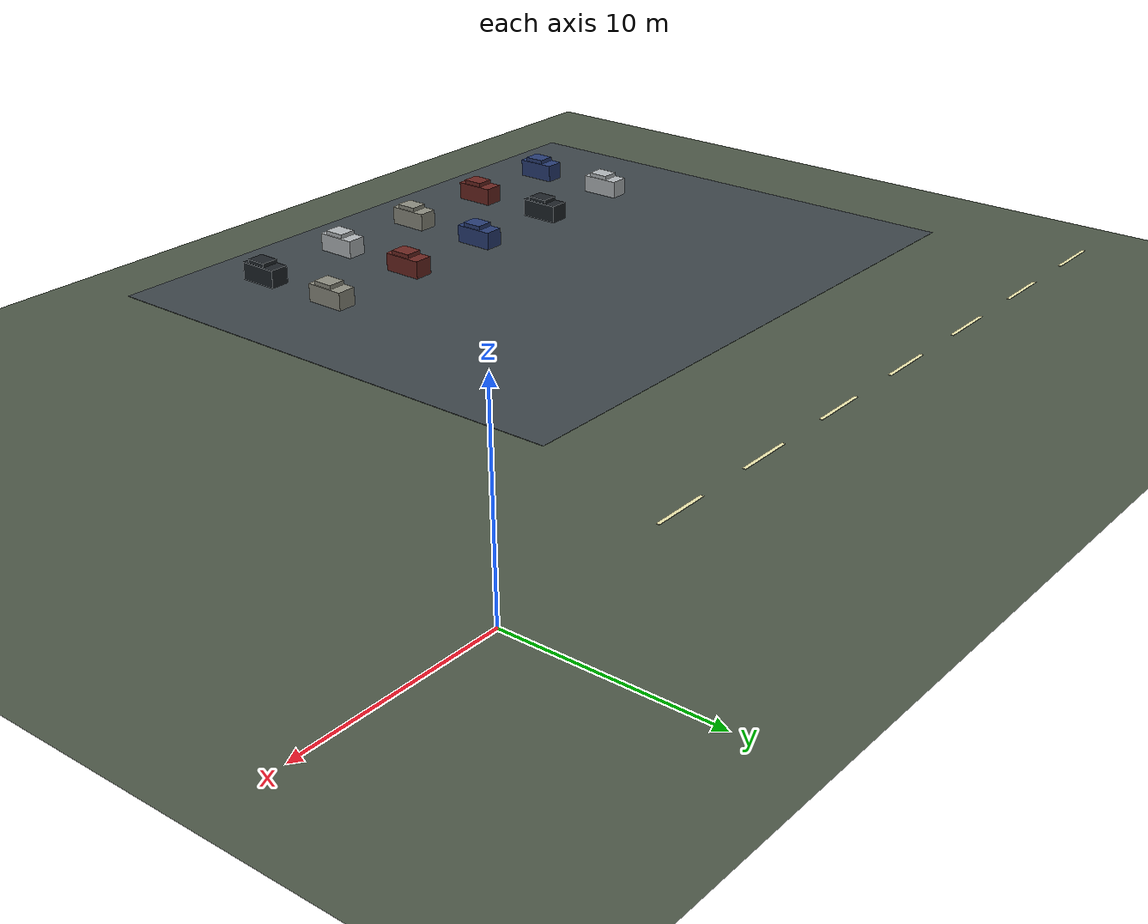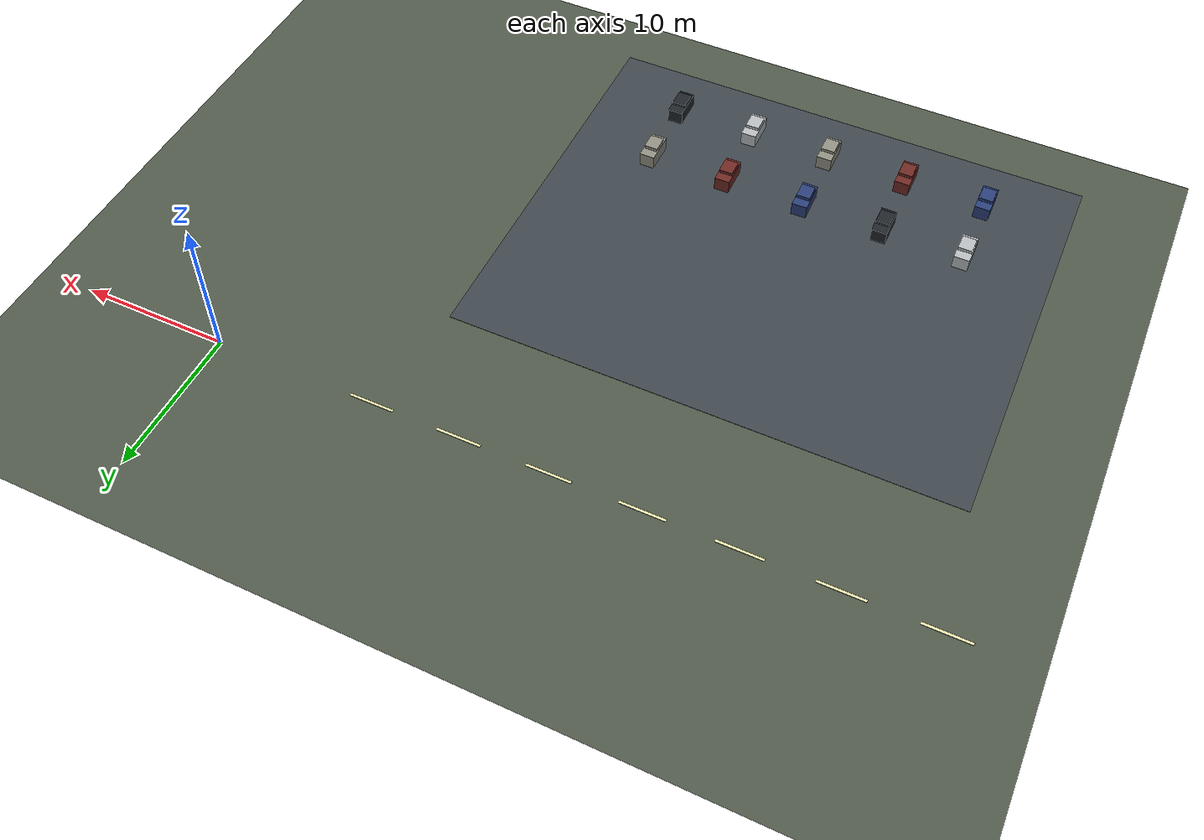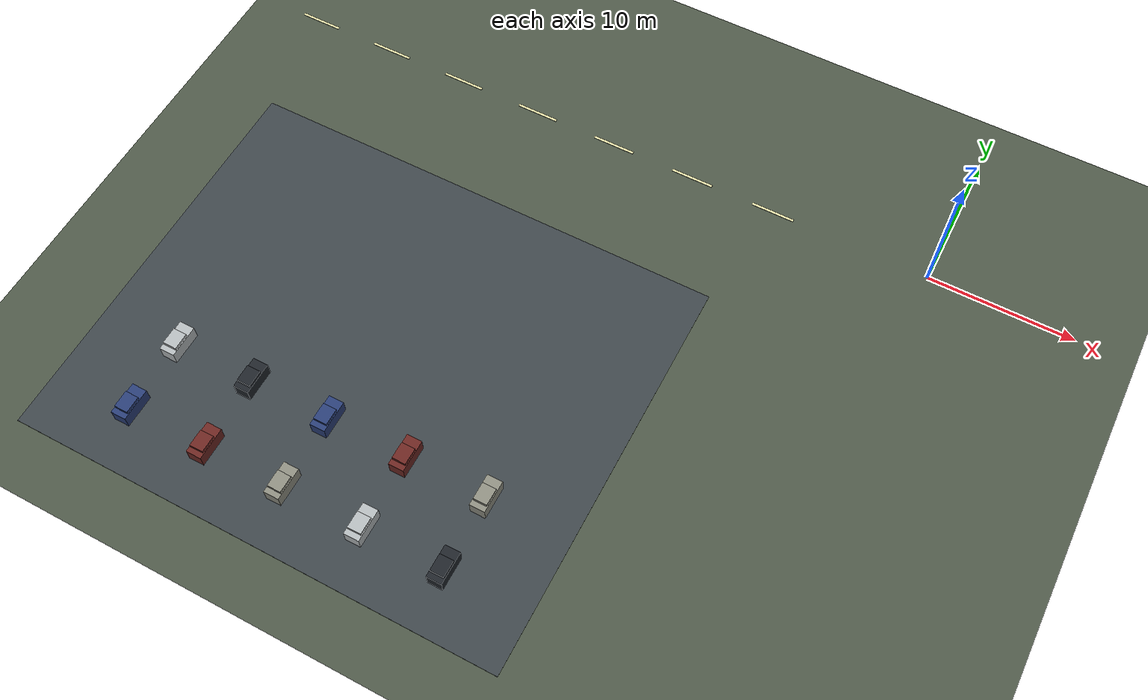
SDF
<sdf version="1.9">
 <world name="gsi_search_world_v2_industrial">
  <model name="ground_plane">
   <static>true</static>
   <link name="link">
    <collision name="collision">
     <geometry><plane><normal>0 0 1</normal><size>130 110</size></plane></geometry>
    </collision>
    <visual name="visual">
     <geometry><plane><normal>0 0 1</normal><size>130 110</size></plane></geometry>
     <material>
      <ambient>0.3 0.34 0.28 1</ambient>
      <diffuse>0.3 0.34 0.28 1</diffuse>
      <specular>0.12 0.12 0.12 1</specular>
     </material>
    </visual>
   </link>
  </model>
  <model name="semantic-employee-parking">
   <static>true</static>
   <pose>-29 -22 0.015 0 0 0</pose>
   <link name="link">
    <visual name="visual">
     <geometry><box><size>34 28 0.02</size></box></geometry>
     <cast_shadows>false</cast_shadows>
     <material>
      <ambient>0.24 0.27 0.29 1</ambient>
      <diffuse>0.24 0.27 0.29 1</diffuse>
      <specular>0.12 0.12 0.12 1</specular>
     </material>
    </visual>
   </link>
  </model>
  <model name="haul-road-marking-01">
   <static>true</static>
   <pose>-47 0 0.04 0 0 0</pose>
   <link name="link">
    <visual name="visual">
     <geometry><box><size>3 0.18 0.025</size></box></geometry>
     <cast_shadows>false</cast_shadows>
     <material>
      <ambient>0.92 0.9 0.68 1</ambient>
      <diffuse>0.92 0.9 0.68 1</diffuse>
      <specular>0.12 0.12 0.12 1</specular>
     </material>
    </visual>
   </link>
  </model>
  <model name="haul-road-marking-02">
   <static>true</static>
   <pose>-41 0 0.04 0 0 0</pose>
   <link name="link">
    <visual name="visual">
     <geometry><box><size>3 0.18 0.025</size></box></geometry>
     <cast_shadows>false</cast_shadows>
     <material>
      <ambient>0.92 0.9 0.68 1</ambient>
      <diffuse>0.92 0.9 0.68 1</diffuse>
      <specular>0.12 0.12 0.12 1</specular>
     </material>
    </visual>
   </link>
  </model>
  <model name="haul-road-marking-03">
   <static>true</static>
   <pose>-35 0 0.04 0 0 0</pose>
   <link name="link">
    <visual name="visual">
     <geometry><box><size>3 0.18 0.025</size></box></geometry>
     <cast_shadows>false</cast_shadows>
     <material>
      <ambient>0.92 0.9 0.68 1</ambient>
      <diffuse>0.92 0.9 0.68 1</diffuse>
      <specular>0.12 0.12 0.12 1</specular>
     </material>
    </visual>
   </link>
  </model>
  <model name="haul-road-marking-04">
   <static>true</static>
   <pose>-29 0 0.04 0 0 0</pose>
   <link name="link">
    <visual name="visual">
     <geometry><box><size>3 0.18 0.025</size></box></geometry>
     <cast_shadows>false</cast_shadows>
     <material>
      <ambient>0.92 0.9 0.68 1</ambient>
      <diffuse>0.92 0.9 0.68 1</diffuse>
      <specular>0.12 0.12 0.12 1</specular>
     </material>
    </visual>
   </link>
  </model>
  <model name="haul-road-marking-05">
   <static>true</static>
   <pose>-23 0 0.04 0 0 0</pose>
   <link name="link">
    <visual name="visual">
     <geometry><box><size>3 0.18 0.025</size></box></geometry>
     <cast_shadows>false</cast_shadows>
     <material>
      <ambient>0.92 0.9 0.68 1</ambient>
      <diffuse>0.92 0.9 0.68 1</diffuse>
      <specular>0.12 0.12 0.12 1</specular>
     </material>
    </visual>
   </link>
  </model>
  <model name="haul-road-marking-06">
   <static>true</static>
   <pose>-17 0 0.04 0 0 0</pose>
   <link name="link">
    <visual name="visual">
     <geometry><box><size>3 0.18 0.025</size></box></geometry>
     <cast_shadows>false</cast_shadows>
     <material>
      <ambient>0.92 0.9 0.68 1</ambient>
      <diffuse>0.92 0.9 0.68 1</diffuse>
      <specular>0.12 0.12 0.12 1</specular>
     </material>
    </visual>
   </link>
  </model>
  <model name="haul-road-marking-07">
   <static>true</static>
   <pose>-11 0 0.04 0 0 0</pose>
   <link name="link">
    <visual name="visual">
     <geometry><box><size>3 0.18 0.025</size></box></geometry>
     <cast_shadows>false</cast_shadows>
     <material>
      <ambient>0.92 0.9 0.68 1</ambient>
      <diffuse>0.92 0.9 0.68 1</diffuse>
      <specular>0.12 0.12 0.12 1</specular>
     </material>
    </visual>
   </link>
  </model>
  <model name="parked-vehicle-01">
   <static>true</static>
   <pose>-40.2 -32 0 0 0 1.5708</pose>
   <link name="body">
    <collision name="body_collision">
     <pose>0 0 0.5 0 0 0</pose>
     <geometry><box><size>2.2 1.05 1.0</size></box></geometry>
    </collision>
    <visual name="body_visual">
     <pose>0 0 0.5 0 0 0</pose>
     <geometry><box><size>2.2 1.05 1.0</size></box></geometry>
     <material>
      <ambient>0.16 0.24 0.46 1</ambient>
      <diffuse>0.16 0.24 0.46 1</diffuse>
      <specular>0.12 0.12 0.12 1</specular>
     </material>
    </visual>
    <visual name="roof">
     <pose>-0.15 0 1.05 0 0 0</pose>
     <geometry><box><size>1.15 0.94 0.35</size></box></geometry>
     <material>
      <ambient>0.16 0.24 0.46 1</ambient>
      <diffuse>0.16 0.24 0.46 1</diffuse>
      <specular>0.12 0.12 0.12 1</specular>
     </material>
    </visual>
   </link>
  </model>
  <model name="parked-vehicle-02">
   <static>true</static>
   <pose>-40.2 -27 0 0 0 1.5708</pose>
   <link name="body">
    <collision name="body_collision">
     <pose>0 0 0.5 0 0 0</pose>
     <geometry><box><size>2.2 1.05 1.0</size></box></geometry>
    </collision>
    <visual name="body_visual">
     <pose>0 0 0.5 0 0 0</pose>
     <geometry><box><size>2.2 1.05 1.0</size></box></geometry>
     <material>
      <ambient>0.7 0.72 0.73 1</ambient>
      <diffuse>0.7 0.72 0.73 1</diffuse>
      <specular>0.12 0.12 0.12 1</specular>
     </material>
    </visual>
    <visual name="roof">
     <pose>-0.15 0 1.05 0 0 0</pose>
     <geometry><box><size>1.15 0.94 0.35</size></box></geometry>
     <material>
      <ambient>0.7 0.72 0.73 1</ambient>
      <diffuse>0.7 0.72 0.73 1</diffuse>
      <specular>0.12 0.12 0.12 1</specular>
     </material>
    </visual>
   </link>
  </model>
  <model name="parked-vehicle-03">
   <static>true</static>
   <pose>-34.6 -32 0 0 0 1.5708</pose>
   <link name="body">
    <collision name="body_collision">
     <pose>0 0 0.5 0 0 0</pose>
     <geometry><box><size>2.2 1.05 1.0</size></box></geometry>
    </collision>
    <visual name="body_visual">
     <pose>0 0 0.5 0 0 0</pose>
     <geometry><box><size>2.2 1.05 1.0</size></box></geometry>
     <material>
      <ambient>0.42 0.15 0.13 1</ambient>
      <diffuse>0.42 0.15 0.13 1</diffuse>
      <specular>0.12 0.12 0.12 1</specular>
     </material>
    </visual>
    <visual name="roof">
     <pose>-0.15 0 1.05 0 0 0</pose>
     <geometry><box><size>1.15 0.94 0.35</size></box></geometry>
     <material>
      <ambient>0.42 0.15 0.13 1</ambient>
      <diffuse>0.42 0.15 0.13 1</diffuse>
      <specular>0.12 0.12 0.12 1</specular>
     </material>
    </visual>
   </link>
  </model>
  <model name="parked-vehicle-04">
   <static>true</static>
   <pose>-34.6 -27 0 0 0 1.5708</pose>
   <link name="body">
    <collision name="body_collision">
     <pose>0 0 0.5 0 0 0</pose>
     <geometry><box><size>2.2 1.05 1.0</size></box></geometry>
    </collision>
    <visual name="body_visual">
     <pose>0 0 0.5 0 0 0</pose>
     <geometry><box><size>2.2 1.05 1.0</size></box></geometry>
     <material>
      <ambient>0.12 0.14 0.16 1</ambient>
      <diffuse>0.12 0.14 0.16 1</diffuse>
      <specular>0.12 0.12 0.12 1</specular>
     </material>
    </visual>
    <visual name="roof">
     <pose>-0.15 0 1.05 0 0 0</pose>
     <geometry><box><size>1.15 0.94 0.35</size></box></geometry>
     <material>
      <ambient>0.12 0.14 0.16 1</ambient>
      <diffuse>0.12 0.14 0.16 1</diffuse>
      <specular>0.12 0.12 0.12 1</specular>
     </material>
    </visual>
   </link>
  </model>
  <model name="parked-vehicle-05">
   <static>true</static>
   <pose>-29 -32 0 0 0 1.5708</pose>
   <link name="body">
    <collision name="body_collision">
     <pose>0 0 0.5 0 0 0</pose>
     <geometry><box><size>2.2 1.05 1.0</size></box></geometry>
    </collision>
    <visual name="body_visual">
     <pose>0 0 0.5 0 0 0</pose>
     <geometry><box><size>2.2 1.05 1.0</size></box></geometry>
     <material>
      <ambient>0.55 0.55 0.5 1</ambient>
      <diffuse>0.55 0.55 0.5 1</diffuse>
      <specular>0.12 0.12 0.12 1</specular>
     </material>
    </visual>
    <visual name="roof">
     <pose>-0.15 0 1.05 0 0 0</pose>
     <geometry><box><size>1.15 0.94 0.35</size></box></geometry>
     <material>
      <ambient>0.55 0.55 0.5 1</ambient>
      <diffuse>0.55 0.55 0.5 1</diffuse>
      <specular>0.12 0.12 0.12 1</specular>
     </material>
    </visual>
   </link>
  </model>
  <model name="parked-vehicle-06">
   <static>true</static>
   <pose>-29 -27 0 0 0 1.5708</pose>
   <link name="body">
    <collision name="body_collision">
     <pose>0 0 0.5 0 0 0</pose>
     <geometry><box><size>2.2 1.05 1.0</size></box></geometry>
    </collision>
    <visual name="body_visual">
     <pose>0 0 0.5 0 0 0</pose>
     <geometry><box><size>2.2 1.05 1.0</size></box></geometry>
     <material>
      <ambient>0.16 0.24 0.46 1</ambient>
      <diffuse>0.16 0.24 0.46 1</diffuse>
      <specular>0.12 0.12 0.12 1</specular>
     </material>
    </visual>
    <visual name="roof">
     <pose>-0.15 0 1.05 0 0 0</pose>
     <geometry><box><size>1.15 0.94 0.35</size></box></geometry>
     <material>
      <ambient>0.16 0.24 0.46 1</ambient>
      <diffuse>0.16 0.24 0.46 1</diffuse>
      <specular>0.12 0.12 0.12 1</specular>
     </material>
    </visual>
   </link>
  </model>
  <model name="parked-vehicle-07">
   <static>true</static>
   <pose>-23.4 -32 0 0 0 1.5708</pose>
   <link name="body">
    <collision name="body_collision">
     <pose>0 0 0.5 0 0 0</pose>
     <geometry><box><size>2.2 1.05 1.0</size></box></geometry>
    </collision>
    <visual name="body_visual">
     <pose>0 0 0.5 0 0 0</pose>
     <geometry><box><size>2.2 1.05 1.0</size></box></geometry>
     <material>
      <ambient>0.7 0.72 0.73 1</ambient>
      <diffuse>0.7 0.72 0.73 1</diffuse>
      <specular>0.12 0.12 0.12 1</specular>
     </material>
    </visual>
    <visual name="roof">
     <pose>-0.15 0 1.05 0 0 0</pose>
     <geometry><box><size>1.15 0.94 0.35</size></box></geometry>
     <material>
      <ambient>0.7 0.72 0.73 1</ambient>
      <diffuse>0.7 0.72 0.73 1</diffuse>
      <specular>0.12 0.12 0.12 1</specular>
     </material>
    </visual>
   </link>
  </model>
  <model name="parked-vehicle-08">
   <static>true</static>
   <pose>-23.4 -27 0 0 0 1.5708</pose>
   <link name="body">
    <collision name="body_collision">
     <pose>0 0 0.5 0 0 0</pose>
     <geometry><box><size>2.2 1.05 1.0</size></box></geometry>
    </collision>
    <visual name="body_visual">
     <pose>0 0 0.5 0 0 0</pose>
     <geometry><box><size>2.2 1.05 1.0</size></box></geometry>
     <material>
      <ambient>0.42 0.15 0.13 1</ambient>
      <diffuse>0.42 0.15 0.13 1</diffuse>
      <specular>0.12 0.12 0.12 1</specular>
     </material>
    </visual>
    <visual name="roof">
     <pose>-0.15 0 1.05 0 0 0</pose>
     <geometry><box><size>1.15 0.94 0.35</size></box></geometry>
     <material>
      <ambient>0.42 0.15 0.13 1</ambient>
      <diffuse>0.42 0.15 0.13 1</diffuse>
      <specular>0.12 0.12 0.12 1</specular>
     </material>
    </visual>
   </link>
  </model>
  <model name="parked-vehicle-09">
   <static>true</static>
   <pose>-17.8 -32 0 0 0 1.5708</pose>
   <link name="body">
    <collision name="body_collision">
     <pose>0 0 0.5 0 0 0</pose>
     <geometry><box><size>2.2 1.05 1.0</size></box></geometry>
    </collision>
    <visual name="body_visual">
     <pose>0 0 0.5 0 0 0</pose>
     <geometry><box><size>2.2 1.05 1.0</size></box></geometry>
     <material>
      <ambient>0.12 0.14 0.16 1</ambient>
      <diffuse>0.12 0.14 0.16 1</diffuse>
      <specular>0.12 0.12 0.12 1</specular>
     </material>
    </visual>
    <visual name="roof">
     <pose>-0.15 0 1.05 0 0 0</pose>
     <geometry><box><size>1.15 0.94 0.35</size></box></geometry>
     <material>
      <ambient>0.12 0.14 0.16 1</ambient>
      <diffuse>0.12 0.14 0.16 1</diffuse>
      <specular>0.12 0.12 0.12 1</specular>
     </material>
    </visual>
   </link>
  </model>
  <model name="parked-vehicle-10">
   <static>true</static>
   <pose>-17.8 -27 0 0 0 1.5708</pose>
   <link name="body">
    <collision name="body_collision">
     <pose>0 0 0.5 0 0 0</pose>
     <geometry><box><size>2.2 1.05 1.0</size></box></geometry>
    </collision>
    <visual name="body_visual">
     <pose>0 0 0.5 0 0 0</pose>
     <geometry><box><size>2.2 1.05 1.0</size></box></geometry>
     <material>
      <ambient>0.55 0.55 0.5 1</ambient>
      <diffuse>0.55 0.55 0.5 1</diffuse>
      <specular>0.12 0.12 0.12 1</specular>
     </material>
    </visual>
    <visual name="roof">
     <pose>-0.15 0 1.05 0 0 0</pose>
     <geometry><box><size>1.15 0.94 0.35</size></box></geometry>
     <material>
      <ambient>0.55 0.55 0.5 1</ambient>
      <diffuse>0.55 0.55 0.5 1</diffuse>
      <specular>0.12 0.12 0.12 1</specular>
     </material>
    </visual>
   </link>
  </model>
 </world>
</sdf>
